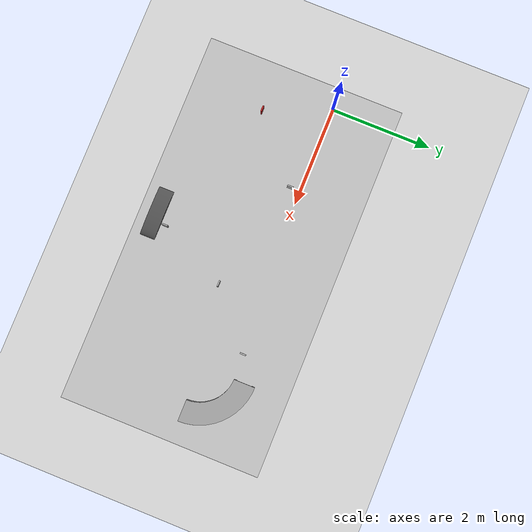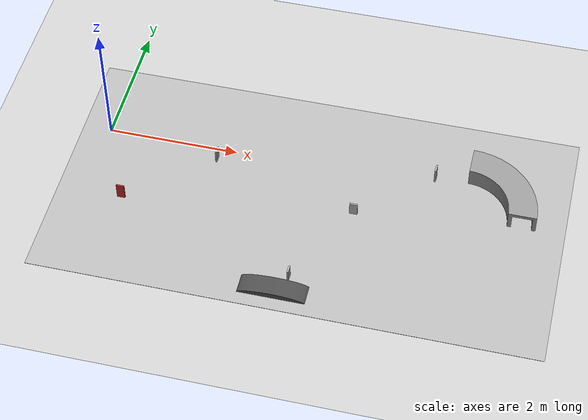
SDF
<sdf version="1.7">
 <world name="default">
  <light name="sun" type="directional">
   <pose>0 0 10 0 -0 0</pose>
   <diffuse>0.8 0.8 0.8 1</diffuse>
   <specular>0.2 0.2 0.2 1</specular>
   <attenuation>
    <range>1000</range>
    <constant>0.9</constant>
    <linear>0.01</linear>
    <quadratic>0.001</quadratic>
   </attenuation>
   <direction>-0.5 0.1 -0.9</direction>
   <spot><inner_angle>0</inner_angle><outer_angle>0</outer_angle><falloff>0</falloff></spot>
  </light>
  <model name="ground_plane">
   <static>1</static>
   <link name="link">
    <collision name="collision">
     <geometry><plane><normal>0 0 1</normal><size>100 100</size></plane></geometry>
     <surface><friction><ode><mu>100</mu><mu2>50</mu2></ode></friction></surface>
    </collision>
    <visual name="visual">
     <cast_shadows>0</cast_shadows>
     <geometry><plane><normal>0 0 1</normal><size>100 100</size></plane></geometry>
     <material>
      <script><uri>file://media/materials/scripts/gazebo.material</uri><name>Gazebo/Grey</name></script>
     </material>
    </visual>
   </link>
  </model>
  <gravity>0 0 -9.8</gravity>
  <magnetic_field>6e-06 2.3e-05 -4.2e-05</magnetic_field>
  <atmosphere type="adiabatic"/>
  <physics type="ode">
   <max_step_size>0.001</max_step_size>
   <real_time_factor>1</real_time_factor>
   <real_time_update_rate>1000</real_time_update_rate>
  </physics>
  <scene><ambient>0.4 0.4 0.4 1</ambient><background>0.7 0.7 0.7 1</background><shadows>1</shadows></scene>
  <audio><device>default</device></audio>
  <spherical_coordinates>
   <surface_model>EARTH_WGS84</surface_model>
   <latitude_deg>0</latitude_deg>
   <longitude_deg>0</longitude_deg>
   <elevation>0</elevation>
   <heading_deg>0</heading_deg>
  </spherical_coordinates>
  <model name="custom_track_2d">
   <static>1</static>
   <link name="link">
    <pose>0 0 0.01 0 -0 3.14159</pose>
    <collision name="collision">
     <geometry><plane><normal>0 0 1</normal><size>7.5 4</size></plane></geometry>
     <surface><friction><ode><mu>100</mu><mu2>50</mu2></ode></friction></surface>
    </collision>
    <visual name="visual">
     <cast_shadows>0</cast_shadows>
     <geometry><plane><normal>0 0 1</normal><size>7.5 4</size></plane></geometry>
     <material>
      <script>
       <uri>model://custom_track_2d/materials/scripts</uri>
       <uri>model://custom_track_2d/materials/textures</uri>
       <name>CustomTrack/Diffuse</name>
      </script>
     </material>
    </visual>
   </link>
   <pose>3.31341 -0.729431 0 0 -0 0</pose>
  </model>
  <model name="traffic_hill_3d">
   <static>1</static>
   <link name="link">
    <collision name="collision">
     <geometry>
      <mesh><uri>model://traffic_hill_3d/meshes/bukit_nxgv.stl</uri><scale>0.001 0.001 0.001</scale></mesh>
     </geometry>
    </collision>
    <visual name="visual">
     <geometry>
      <mesh><uri>model://traffic_hill_3d/meshes/bukit_nxgv.stl</uri><scale>0.001 0.001 0.001</scale></mesh>
     </geometry>
     <material>
      <script><uri>file://media/materials/scripts/gazebo.material</uri><name>Gazebo/DarkGrey</name></script>
     </material>
    </visual>
   </link>
   <pose>3.1114 -2.39584 0 0 -0 0</pose>
  </model>
  <model name="traffic_tunnel_3d">
   <static>1</static>
   <link name="link">
    <pose>0 0 0 0 -0 3.14159</pose>
    <collision name="collision">
     <geometry>
      <mesh><uri>model://traffic_tunnel_3d/meshes/terowong_nxgv.stl</uri><scale>0.002 0.002 0.002</scale></mesh>
     </geometry>
    </collision>
    <visual name="visual">
     <geometry>
      <mesh><uri>model://traffic_tunnel_3d/meshes/terowong_nxgv.stl</uri><scale>0.002 0.002 0.002</scale></mesh>
     </geometry>
     <material>
      <script><uri>file://media/materials/scripts/gazebo.material</uri><name>Gazebo/Grey</name></script>
     </material>
    </visual>
   </link>
   <pose>5.57193 0.03724 0 0 -0 0</pose>
  </model>
  <model name="traffic_parking">
   <static>1</static>
   <link name="box">
    <collision name="collision"><geometry><box><size>0.12 0.025 0.25</size></box></geometry></collision>
    <visual name="visual">
     <geometry><box><size>0.12 0.025 0.25</size></box></geometry>
     <material>
      <script>
       <uri>model://traffic_parking/materials/scripts</uri>
       <uri>model://traffic_parking/materials/textures</uri>
       <name>traffic_parking</name>
      </script>
     </material>
    </visual>
   </link>
   <pose>3.97266 -0.770475 0.099292 0 -0 0</pose>
  </model>
  <model name="traffic_parking_clone">
   <static>1</static>
   <link name="box">
    <collision name="collision"><geometry><box><size>0.12 0.025 0.25</size></box></geometry></collision>
    <visual name="visual">
     <geometry><box><size>0.12 0.025 0.25</size></box></geometry>
     <material>
      <script>
       <uri>model://traffic_parking/materials/scripts</uri>
       <uri>model://traffic_parking/materials/textures</uri>
       <name>traffic_parking</name>
      </script>
     </material>
    </visual>
   </link>
   <pose>3.32119 -2.13681 0.099292 0 0 -1.5742</pose>
  </model>
  <model name="traffic_light">
   <link name="traffic_light">
    <collision name="collision"><geometry><box><size>0.12 0.025 0.25</size></box></geometry></collision>
    <visual name="visual">
     <geometry><box><size>0.12 0.025 0.25</size></box></geometry>
     <material>
      <script>
       <uri>model://traffic_light/materials/scripts</uri>
       <uri>model://traffic_light/materials/textures</uri>
       <name>traffic_light_red</name>
      </script>
     </material>
    </visual>
   </link>
   <plugin name="traffic_light_plugin" filename="libtraffic_light_plugin.so"/>
   <static>1</static>
   <pose>0.559058 -1.25654 0.166545 0 -0 0</pose>
  </model>
  <model name="traffic_pl_left">
   <static>1</static>
   <link name="box">
    <collision name="collision"><geometry><box><size>0.12 0.025 0.25</size></box></geometry></collision>
    <visual name="visual">
     <geometry><box><size>0.12 0.025 0.25</size></box></geometry>
     <material>
      <script>
       <uri>model://traffic_pl_left/materials/scripts</uri>
       <uri>model://traffic_pl_left/materials/textures</uri>
       <name>traffic_pl_left</name>
      </script>
     </material>
    </visual>
   </link>
   <pose>1.74335 -0.201289 0.099366 0 -0 1.57</pose>
  </model>
  <model name="traffic_tunnel">
   <pose>5.03154 0.155881 0.13503 0.000402 0.000415 1.55504</pose>
   <link name="box">
    <collision name="collision"><geometry><box><size>0.12 0.025 0.25</size></box></geometry></collision>
    <visual name="visual">
     <geometry><box><size>0.12 0.025 0.25</size></box></geometry>
     <material>
      <script>
       <uri>model://traffic_tunnel/materials/scripts</uri>
       <uri>model://traffic_tunnel/materials/textures</uri>
       <name>traffic_tunnel</name>
      </script>
     </material>
    </visual>
    <inertial>
     <inertia><ixx>1</ixx><ixy>0</ixy><ixz>0</ixz><iyy>1</iyy><iyz>0</iyz><izz>1</izz></inertia>
     <mass>1</mass>
    </inertial>
   </link>
  </model>
 </world>
</sdf>
